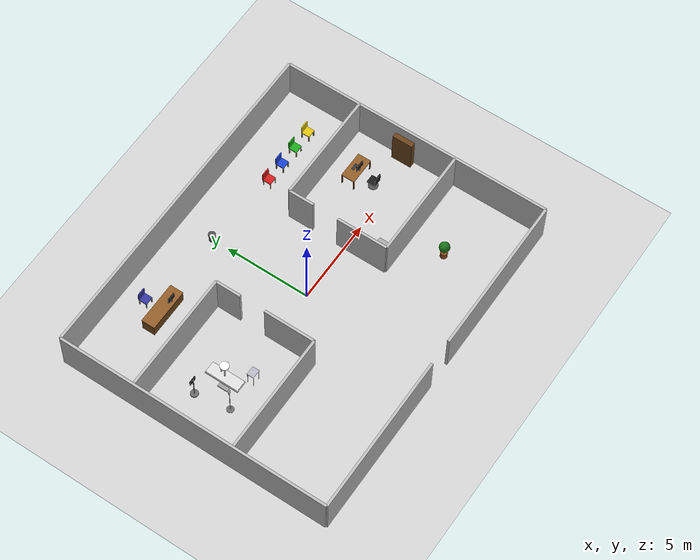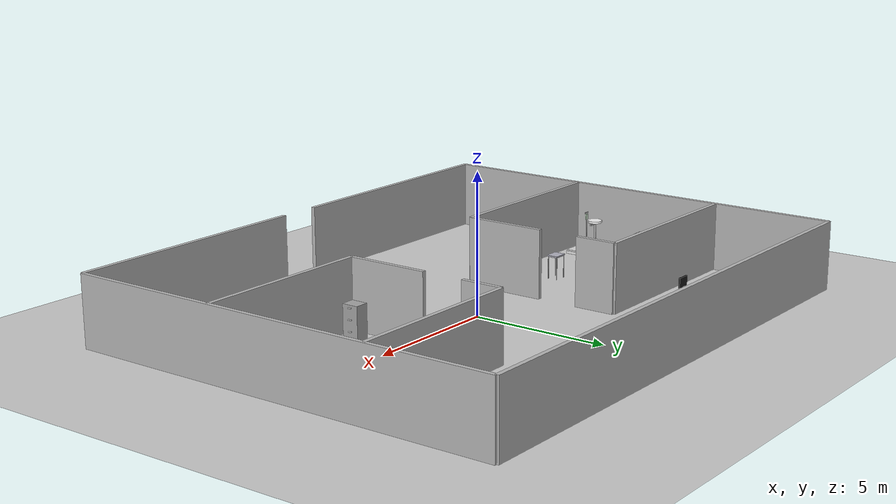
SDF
<?xml version="1.0"?>
<sdf version="1.7">
  <world name="uvc3_room">

    <!-- ========== GAZEBO ROS PLUGINS ========== -->
    <plugin name="gazebo_ros_state" filename="libgazebo_ros_state.so">
      <ros>
        <namespace>/gazebo</namespace>
      </ros>
      <update_rate>10.0</update_rate>
    </plugin>

    <!-- ========== LIGHTING ========== -->
    <light name="sun" type="directional">
      <cast_shadows>0</cast_shadows>
      <pose>0 0 10 0 0 0</pose>
      <diffuse>0.6 0.6 0.6 1</diffuse>
      <specular>0.1 0.1 0.1 1</specular>
      <attenuation>
        <range>1000</range>
        <constant>0.9</constant>
        <linear>0.01</linear>
        <quadratic>0.001</quadratic>
      </attenuation>
      <direction>0 0 -1</direction>
      <spot><inner_angle>0</inner_angle><outer_angle>0</outer_angle><falloff>0</falloff></spot>
    </light>

    <!-- ========== PHYSICS ========== -->
    <gravity>0 0 -9.8</gravity>
    <magnetic_field>6e-06 2.3e-05 -4.2e-05</magnetic_field>
    <atmosphere type="adiabatic"/>
    <physics type="ode">
      <max_step_size>0.001</max_step_size>
      <real_time_factor>1</real_time_factor>
      <real_time_update_rate>1000</real_time_update_rate>
    </physics>

    <!-- ========== SCENE ========== -->
    <scene>
      <ambient>0.4 0.4 0.4 1</ambient>
      <background>0.5 0.5 0.5 1</background>
      <shadows>0</shadows>
    </scene>

    <audio><device>default</device></audio>
    <wind/>
    <spherical_coordinates>
      <surface_model>EARTH_WGS84</surface_model>
      <latitude_deg>0</latitude_deg>
      <longitude_deg>0</longitude_deg>
      <elevation>0</elevation>
      <heading_deg>0</heading_deg>
    </spherical_coordinates>

    <!-- ========== GROUND PLANE ========== -->
    <model name="ground_plane">
      <static>1</static>
      <link name="link">
        <collision name="collision">
          <geometry><plane><normal>0 0 1</normal><size>100 100</size></plane></geometry>
          <surface>
            <friction><ode><mu>100</mu><mu2>50</mu2></ode><torsional><ode/></torsional></friction>
            <contact><ode/></contact>
            <bounce/>
          </surface>
          <max_contacts>10</max_contacts>
        </collision>
        <visual name="visual">
          <cast_shadows>0</cast_shadows>
          <geometry><plane><normal>0 0 1</normal><size>100 100</size></plane></geometry>
          <material><script><uri>file://media/materials/scripts/gazebo.material</uri><n>Gazebo/Grey</n></script></material>
        </visual>
        <self_collide>0</self_collide><enable_wind>0</enable_wind><kinematic>0</kinematic>
      </link>
    </model>

    <!-- OUTER ENVIRONMENT WALLS                                     -->
    <!-- Room: 20m wide (x:-10 to 10), 16m deep (y:-8 to 8)        -->
    <!-- Entry: south wall, opening at x:-0.75 to 0.75              -->
    <model name="uvc3_outer_walls">
      <static>1</static>
      <pose>0 0 0 0 0 0</pose>

      <!-- South wall left segment: x -10 to -0.75 => length 9.25, center x=-5.375 -->
      <link name="Wall_south_left">
        <collision name="col"><geometry><box><size>9.25 0.15 2.5</size></box></geometry><pose>0 0 1.25 0 0 0</pose><max_contacts>10</max_contacts><surface><contact><ode/></contact><bounce/><friction><torsional><ode/></torsional><ode/></friction></surface></collision>
        <visual name="vis"><pose>0 0 1.25 0 0 0</pose><geometry><box><size>9.25 0.15 2.5</size></box></geometry><material><script><uri>file://media/materials/scripts/gazebo.material</uri><n>Gazebo/Grey</n></script></material></visual>
        <pose>-5.375 -8.0 0 0 0 0</pose>
        <self_collide>0</self_collide><enable_wind>0</enable_wind><kinematic>0</kinematic>
      </link>

      <!-- South wall right segment: x 0.75 to 10 => length 9.25, center x=5.375 -->
      <link name="Wall_south_right">
        <collision name="col"><geometry><box><size>9.25 0.15 2.5</size></box></geometry><pose>0 0 1.25 0 0 0</pose><max_contacts>10</max_contacts><surface><contact><ode/></contact><bounce/><friction><torsional><ode/></torsional><ode/></friction></surface></collision>
        <visual name="vis"><pose>0 0 1.25 0 0 0</pose><geometry><box><size>9.25 0.15 2.5</size></box></geometry><material><script><uri>file://media/materials/scripts/gazebo.material</uri><n>Gazebo/Grey</n></script></material></visual>
        <pose>5.375 -8.0 0 0 0 0</pose>
        <self_collide>0</self_collide><enable_wind>0</enable_wind><kinematic>0</kinematic>
      </link>

      <!-- North wall: full 20m -->
      <link name="Wall_north">
        <collision name="col"><geometry><box><size>20.0 0.15 2.5</size></box></geometry><pose>0 0 1.25 0 0 0</pose><max_contacts>10</max_contacts><surface><contact><ode/></contact><bounce/><friction><torsional><ode/></torsional><ode/></friction></surface></collision>
        <visual name="vis"><pose>0 0 1.25 0 0 0</pose><geometry><box><size>20.0 0.15 2.5</size></box></geometry><material><script><uri>file://media/materials/scripts/gazebo.material</uri><n>Gazebo/Grey</n></script></material></visual>
        <pose>0 8.0 0 0 0 0</pose>
        <self_collide>0</self_collide><enable_wind>0</enable_wind><kinematic>0</kinematic>
      </link>

      <!-- East wall: full 16m -->
      <link name="Wall_east">
        <collision name="col"><geometry><box><size>0.15 16.0 2.5</size></box></geometry><pose>0 0 1.25 0 0 0</pose><max_contacts>10</max_contacts><surface><contact><ode/></contact><bounce/><friction><torsional><ode/></torsional><ode/></friction></surface></collision>
        <visual name="vis"><pose>0 0 1.25 0 0 0</pose><geometry><box><size>0.15 16.0 2.5</size></box></geometry><material><script><uri>file://media/materials/scripts/gazebo.material</uri><n>Gazebo/Grey</n></script></material></visual>
        <pose>10.0 0 0 0 0 0</pose>
        <self_collide>0</self_collide><enable_wind>0</enable_wind><kinematic>0</kinematic>
      </link>

      <!-- West wall: full 16m (closed) -->
      <link name="Wall_west">
        <collision name="col"><geometry><box><size>0.15 16.0 2.5</size></box></geometry><pose>0 0 1.25 0 0 0</pose><max_contacts>10</max_contacts><surface><contact><ode/></contact><bounce/><friction><torsional><ode/></torsional><ode/></friction></surface></collision>
        <visual name="vis"><pose>0 0 1.25 0 0 0</pose><geometry><box><size>0.15 16.0 2.5</size></box></geometry><material><script><uri>file://media/materials/scripts/gazebo.material</uri><n>Gazebo/Grey</n></script></material></visual>
        <pose>-10.0 0 0 0 0 0</pose>
        <self_collide>0</self_collide><enable_wind>0</enable_wind><kinematic>0</kinematic>
      </link>

    </model>

    <!-- ROOM-1: OFFICE  (right side)                               -->
    <!-- Outer boundary: x: 3.5 to 10.0, y: -2.5 to 3.5           -->
    <!-- Inner space:    x: 3.65 to 9.85, y: -2.35 to 3.35        -->
    <!-- Entry opening:  west wall of room, y: 0.5 to 2.0          -->
    <model name="room1_office_walls">
      <static>1</static>
      <pose>0 0 0 0 0 0</pose>

      <!-- South wall of office: x 3.5 to 10.0, length 6.5 -->
      <link name="R1_south">
        <collision name="col"><geometry><box><size>6.5 0.15 2.5</size></box></geometry><pose>0 0 1.25 0 0 0</pose><max_contacts>10</max_contacts><surface><contact><ode/></contact><bounce/><friction><torsional><ode/></torsional><ode/></friction></surface></collision>
        <visual name="vis"><pose>0 0 1.25 0 0 0</pose><geometry><box><size>6.5 0.15 2.5</size></box></geometry><material><script><uri>file://media/materials/scripts/gazebo.material</uri><n>Gazebo/White</n></script></material></visual>
        <pose>6.75 -2.5 0 0 0 0</pose>
        <self_collide>0</self_collide><enable_wind>0</enable_wind><kinematic>0</kinematic>
      </link>

      <!-- North wall of office: x 3.5 to 10.0, length 6.5 -->
      <link name="R1_north">
        <collision name="col"><geometry><box><size>6.5 0.15 2.5</size></box></geometry><pose>0 0 1.25 0 0 0</pose><max_contacts>10</max_contacts><surface><contact><ode/></contact><bounce/><friction><torsional><ode/></torsional><ode/></friction></surface></collision>
        <visual name="vis"><pose>0 0 1.25 0 0 0</pose><geometry><box><size>6.5 0.15 2.5</size></box></geometry><material><script><uri>file://media/materials/scripts/gazebo.material</uri><n>Gazebo/White</n></script></material></visual>
        <pose>6.75 3.5 0 0 0 0</pose>
        <self_collide>0</self_collide><enable_wind>0</enable_wind><kinematic>0</kinematic>
      </link>

      <!-- West wall of office south segment: y -2.5 to 0.5 => length 3.0, center y=-1.0 -->
      <link name="R1_west_south">
        <collision name="col"><geometry><box><size>0.15 3.0 2.5</size></box></geometry><pose>0 0 1.25 0 0 0</pose><max_contacts>10</max_contacts><surface><contact><ode/></contact><bounce/><friction><torsional><ode/></torsional><ode/></friction></surface></collision>
        <visual name="vis"><pose>0 0 1.25 0 0 0</pose><geometry><box><size>0.15 3.0 2.5</size></box></geometry><material><script><uri>file://media/materials/scripts/gazebo.material</uri><n>Gazebo/White</n></script></material></visual>
        <pose>3.5 -1.0 0 0 0 0</pose>
        <self_collide>0</self_collide><enable_wind>0</enable_wind><kinematic>0</kinematic>
      </link>

      <!-- West wall of office north segment: y 2.0 to 3.5 => length 1.5, center y=2.75 -->
      <link name="R1_west_north">
        <collision name="col"><geometry><box><size>0.15 1.5 2.5</size></box></geometry><pose>0 0 1.25 0 0 0</pose><max_contacts>10</max_contacts><surface><contact><ode/></contact><bounce/><friction><torsional><ode/></torsional><ode/></friction></surface></collision>
        <visual name="vis"><pose>0 0 1.25 0 0 0</pose><geometry><box><size>0.15 1.5 2.5</size></box></geometry><material><script><uri>file://media/materials/scripts/gazebo.material</uri><n>Gazebo/White</n></script></material></visual>
        <pose>3.5 2.75 0 0 0 0</pose>
        <self_collide>0</self_collide><enable_wind>0</enable_wind><kinematic>0</kinematic>
      </link>

    </model>

    <!-- ROOM-2: OPERATION THEATRE (fixed to west wall)             -->
    <!-- Outer boundary: x: -10.0 to -3.0, y: -2.5 to 3.5         -->
    <!-- West wall shared with outer west wall (no inner west wall) -->
    <!-- Entry opening: east wall of room, y: 0.5 to 2.0           -->
    <model name="room2_ot_walls">
      <static>1</static>
      <pose>0 0 0 0 0 0</pose>

      <!-- South wall of OT: x -10.0 to -3.0, length 7.0, center x=-6.5 -->
      <link name="R2_south">
        <collision name="col"><geometry><box><size>7.0 0.15 2.5</size></box></geometry><pose>0 0 1.25 0 0 0</pose><max_contacts>10</max_contacts><surface><contact><ode/></contact><bounce/><friction><torsional><ode/></torsional><ode/></friction></surface></collision>
        <visual name="vis"><pose>0 0 1.25 0 0 0</pose><geometry><box><size>7.0 0.15 2.5</size></box></geometry><material><script><uri>file://media/materials/scripts/gazebo.material</uri><n>Gazebo/White</n></script></material></visual>
        <pose>-6.5 -2.5 0 0 0 0</pose>
        <self_collide>0</self_collide><enable_wind>0</enable_wind><kinematic>0</kinematic>
      </link>

      <!-- North wall of OT: x -10.0 to -3.0, length 7.0, center x=-6.5 -->
      <link name="R2_north">
        <collision name="col"><geometry><box><size>7.0 0.15 2.5</size></box></geometry><pose>0 0 1.25 0 0 0</pose><max_contacts>10</max_contacts><surface><contact><ode/></contact><bounce/><friction><torsional><ode/></torsional><ode/></friction></surface></collision>
        <visual name="vis"><pose>0 0 1.25 0 0 0</pose><geometry><box><size>7.0 0.15 2.5</size></box></geometry><material><script><uri>file://media/materials/scripts/gazebo.material</uri><n>Gazebo/White</n></script></material></visual>
        <pose>-6.5 3.5 0 0 0 0</pose>
        <self_collide>0</self_collide><enable_wind>0</enable_wind><kinematic>0</kinematic>
      </link>

      <!-- East wall of OT south segment: y -2.5 to 0.5 => length 3.0, center y=-1.0 -->
      <link name="R2_east_south">
        <collision name="col"><geometry><box><size>0.15 3.0 2.5</size></box></geometry><pose>0 0 1.25 0 0 0</pose><max_contacts>10</max_contacts><surface><contact><ode/></contact><bounce/><friction><torsional><ode/></torsional><ode/></friction></surface></collision>
        <visual name="vis"><pose>0 0 1.25 0 0 0</pose><geometry><box><size>0.15 3.0 2.5</size></box></geometry><material><script><uri>file://media/materials/scripts/gazebo.material</uri><n>Gazebo/White</n></script></material></visual>
        <pose>-3.0 -1.0 0 0 0 0</pose>
        <self_collide>0</self_collide><enable_wind>0</enable_wind><kinematic>0</kinematic>
      </link>

      <!-- East wall of OT north segment: y 2.0 to 3.5 => length 1.5, center y=2.75 -->
      <link name="R2_east_north">
        <collision name="col"><geometry><box><size>0.15 1.5 2.5</size></box></geometry><pose>0 0 1.25 0 0 0</pose><max_contacts>10</max_contacts><surface><contact><ode/></contact><bounce/><friction><torsional><ode/></torsional><ode/></friction></surface></collision>
        <visual name="vis"><pose>0 0 1.25 0 0 0</pose><geometry><box><size>0.15 1.5 2.5</size></box></geometry><material><script><uri>file://media/materials/scripts/gazebo.material</uri><n>Gazebo/White</n></script></material></visual>
        <pose>-3.0 2.75 0 0 0 0</pose>
        <self_collide>0</self_collide><enable_wind>0</enable_wind><kinematic>0</kinematic>
      </link>

    </model>

    <!-- LOBBY OBJECTS                                               -->

    <!-- RECEPTION TABLE (top-left lobby, x=-5.0 y=5.5) -->
    <!-- Long desk: 2.5m wide, 0.8m deep, 0.75m tall    -->
    <model name="reception_table">
      <static>1</static>
      <pose>-5.0 5.5 0 0 0 0</pose>
      <link name="link">
        <!-- Desk top -->
        <visual name="top_vis"><pose>0 0 0.75 0 0 0</pose><geometry><box><size>2.5 0.8 0.06</size></box></geometry><material><ambient>0.55 0.35 0.15 1</ambient><diffuse>0.55 0.35 0.15 1</diffuse><specular>0.15 0.10 0.05 1</specular></material></visual>
        <collision name="top_col"><pose>0 0 0.75 0 0 0</pose><geometry><box><size>2.5 0.8 0.06</size></box></geometry><max_contacts>10</max_contacts></collision>
        <!-- Desk body/cabinet -->
        <visual name="body_vis"><pose>0 0 0.375 0 0 0</pose><geometry><box><size>2.5 0.75 0.75</size></box></geometry><material><ambient>0.45 0.28 0.10 1</ambient><diffuse>0.45 0.28 0.10 1</diffuse></material></visual>
        <collision name="body_col"><pose>0 0 0.375 0 0 0</pose><geometry><box><size>2.5 0.75 0.75</size></box></geometry><max_contacts>10</max_contacts></collision>
        <!-- Monitor on desk -->
        <visual name="monitor_vis"><pose>0.5 -0.2 1.1 0 0 0</pose><geometry><box><size>0.50 0.05 0.35</size></box></geometry><material><ambient>0.10 0.10 0.10 1</ambient><diffuse>0.10 0.10 0.10 1</diffuse></material></visual>
        <collision name="monitor_col"><pose>0.5 -0.2 1.1 0 0 0</pose><geometry><box><size>0.50 0.05 0.35</size></box></geometry><max_contacts>10</max_contacts></collision>
        <!-- Monitor stand -->
        <visual name="mstand_vis"><pose>0.5 -0.2 0.85 0 0 0</pose><geometry><box><size>0.08 0.08 0.20</size></box></geometry><material><ambient>0.15 0.15 0.15 1</ambient><diffuse>0.15 0.15 0.15 1</diffuse></material></visual>
        <collision name="mstand_col"><pose>0.5 -0.2 0.85 0 0 0</pose><geometry><box><size>0.08 0.08 0.20</size></box></geometry><max_contacts>10</max_contacts></collision>
        <self_collide>0</self_collide><enable_wind>0</enable_wind><kinematic>0</kinematic>
      </link>
    </model>

    <!-- RECEPTION CHAIR (behind reception table) -->
    <model name="reception_chair">
      <static>1</static>
      <pose>-5.0 6.6 0 0 0 0</pose>
      <link name="link">
        <visual name="seat_vis"><pose>0 0 0.45 0 0 0</pose><geometry><box><size>0.50 0.50 0.06</size></box></geometry><material><ambient>0.20 0.20 0.60 1</ambient><diffuse>0.20 0.20 0.60 1</diffuse></material></visual>
        <collision name="seat_col"><pose>0 0 0.45 0 0 0</pose><geometry><box><size>0.50 0.50 0.06</size></box></geometry><max_contacts>10</max_contacts></collision>
        <visual name="back_vis"><pose>0 0.24 0.70 0 0 0</pose><geometry><box><size>0.50 0.06 0.50</size></box></geometry><material><ambient>0.20 0.20 0.60 1</ambient><diffuse>0.20 0.20 0.60 1</diffuse></material></visual>
        <collision name="back_col"><pose>0 0.24 0.70 0 0 0</pose><geometry><box><size>0.50 0.06 0.50</size></box></geometry><max_contacts>10</max_contacts></collision>
        <visual name="leg1_vis"><pose>-0.22 -0.22 0.225 0 0 0</pose><geometry><box><size>0.05 0.05 0.45</size></box></geometry><material><ambient>0.15 0.10 0.05 1</ambient><diffuse>0.15 0.10 0.05 1</diffuse></material></visual>
        <collision name="leg1_col"><pose>-0.22 -0.22 0.225 0 0 0</pose><geometry><box><size>0.05 0.05 0.45</size></box></geometry><max_contacts>10</max_contacts></collision>
        <visual name="leg2_vis"><pose>0.22 -0.22 0.225 0 0 0</pose><geometry><box><size>0.05 0.05 0.45</size></box></geometry><material><ambient>0.15 0.10 0.05 1</ambient><diffuse>0.15 0.10 0.05 1</diffuse></material></visual>
        <collision name="leg2_col"><pose>0.22 -0.22 0.225 0 0 0</pose><geometry><box><size>0.05 0.05 0.45</size></box></geometry><max_contacts>10</max_contacts></collision>
        <visual name="leg3_vis"><pose>-0.22 0.22 0.225 0 0 0</pose><geometry><box><size>0.05 0.05 0.45</size></box></geometry><material><ambient>0.15 0.10 0.05 1</ambient><diffuse>0.15 0.10 0.05 1</diffuse></material></visual>
        <collision name="leg3_col"><pose>-0.22 0.22 0.225 0 0 0</pose><geometry><box><size>0.05 0.05 0.45</size></box></geometry><max_contacts>10</max_contacts></collision>
        <visual name="leg4_vis"><pose>0.22 0.22 0.225 0 0 0</pose><geometry><box><size>0.05 0.05 0.45</size></box></geometry><material><ambient>0.15 0.10 0.05 1</ambient><diffuse>0.15 0.10 0.05 1</diffuse></material></visual>
        <collision name="leg4_col"><pose>0.22 0.22 0.225 0 0 0</pose><geometry><box><size>0.05 0.05 0.45</size></box></geometry><max_contacts>10</max_contacts></collision>
        <self_collide>0</self_collide><enable_wind>0</enable_wind><kinematic>0</kinematic>
      </link>
    </model>

    <!-- DUST BIN (top-center lobby, x=0.0 y=6.0) -->
    <model name="dust_bin">
      <static>1</static>
      <pose>0.0 6.0 0 0 0 0</pose>
      <link name="link">
        <!-- Bin body (slightly tapered approximated as box) -->
        <visual name="bin_vis"><pose>0 0 0.25 0 0 0</pose><geometry><cylinder><radius>0.18</radius><length>0.50</length></cylinder></geometry><material><ambient>0.20 0.20 0.20 1</ambient><diffuse>0.20 0.20 0.20 1</diffuse><specular>0.10 0.10 0.10 1</specular></material></visual>
        <collision name="bin_col"><pose>0 0 0.25 0 0 0</pose><geometry><cylinder><radius>0.18</radius><length>0.50</length></cylinder></geometry><max_contacts>10</max_contacts></collision>
        <!-- Bin lid rim -->
        <visual name="rim_vis"><pose>0 0 0.51 0 0 0</pose><geometry><cylinder><radius>0.20</radius><length>0.03</length></cylinder></geometry><material><ambient>0.30 0.30 0.30 1</ambient><diffuse>0.30 0.30 0.30 1</diffuse></material></visual>
        <collision name="rim_col"><pose>0 0 0.51 0 0 0</pose><geometry><cylinder><radius>0.20</radius><length>0.03</length></cylinder></geometry><max_contacts>10</max_contacts></collision>
        <self_collide>0</self_collide><enable_wind>0</enable_wind><kinematic>0</kinematic>
      </link>
    </model>

    <!-- WAITING CHAIR 1 - RED (x=4.5 y=5.5) -->
    <model name="waiting_chair_1">
      <static>1</static>
      <pose>4.5 5.5 0 0 0 0</pose>
      <link name="link">
        <visual name="seat_vis"><pose>0 0 0.45 0 0 0</pose><geometry><box><size>0.50 0.50 0.06</size></box></geometry><material><ambient>0.80 0.10 0.10 1</ambient><diffuse>0.80 0.10 0.10 1</diffuse></material></visual>
        <collision name="seat_col"><pose>0 0 0.45 0 0 0</pose><geometry><box><size>0.50 0.50 0.06</size></box></geometry><max_contacts>10</max_contacts></collision>
        <visual name="back_vis"><pose>0 0.24 0.70 0 0 0</pose><geometry><box><size>0.50 0.06 0.50</size></box></geometry><material><ambient>0.80 0.10 0.10 1</ambient><diffuse>0.80 0.10 0.10 1</diffuse></material></visual>
        <collision name="back_col"><pose>0 0.24 0.70 0 0 0</pose><geometry><box><size>0.50 0.06 0.50</size></box></geometry><max_contacts>10</max_contacts></collision>
        <visual name="leg1_vis"><pose>-0.22 -0.22 0.225 0 0 0</pose><geometry><box><size>0.05 0.05 0.45</size></box></geometry><material><ambient>0.15 0.10 0.05 1</ambient><diffuse>0.15 0.10 0.05 1</diffuse></material></visual>
        <collision name="leg1_col"><pose>-0.22 -0.22 0.225 0 0 0</pose><geometry><box><size>0.05 0.05 0.45</size></box></geometry><max_contacts>10</max_contacts></collision>
        <visual name="leg2_vis"><pose>0.22 -0.22 0.225 0 0 0</pose><geometry><box><size>0.05 0.05 0.45</size></box></geometry><material><ambient>0.15 0.10 0.05 1</ambient><diffuse>0.15 0.10 0.05 1</diffuse></material></visual>
        <collision name="leg2_col"><pose>0.22 -0.22 0.225 0 0 0</pose><geometry><box><size>0.05 0.05 0.45</size></box></geometry><max_contacts>10</max_contacts></collision>
        <visual name="leg3_vis"><pose>-0.22 0.22 0.225 0 0 0</pose><geometry><box><size>0.05 0.05 0.45</size></box></geometry><material><ambient>0.15 0.10 0.05 1</ambient><diffuse>0.15 0.10 0.05 1</diffuse></material></visual>
        <collision name="leg3_col"><pose>-0.22 0.22 0.225 0 0 0</pose><geometry><box><size>0.05 0.05 0.45</size></box></geometry><max_contacts>10</max_contacts></collision>
        <visual name="leg4_vis"><pose>0.22 0.22 0.225 0 0 0</pose><geometry><box><size>0.05 0.05 0.45</size></box></geometry><material><ambient>0.15 0.10 0.05 1</ambient><diffuse>0.15 0.10 0.05 1</diffuse></material></visual>
        <collision name="leg4_col"><pose>0.22 0.22 0.225 0 0 0</pose><geometry><box><size>0.05 0.05 0.45</size></box></geometry><max_contacts>10</max_contacts></collision>
        <self_collide>0</self_collide><enable_wind>0</enable_wind><kinematic>0</kinematic>
      </link>
    </model>

    <!-- WAITING CHAIR 2 - BLUE (x=5.7 y=5.5) -->
    <model name="waiting_chair_2">
      <static>1</static>
      <pose>5.7 5.5 0 0 0 0</pose>
      <link name="link">
        <visual name="seat_vis"><pose>0 0 0.45 0 0 0</pose><geometry><box><size>0.50 0.50 0.06</size></box></geometry><material><ambient>0.10 0.25 0.80 1</ambient><diffuse>0.10 0.25 0.80 1</diffuse></material></visual>
        <collision name="seat_col"><pose>0 0 0.45 0 0 0</pose><geometry><box><size>0.50 0.50 0.06</size></box></geometry><max_contacts>10</max_contacts></collision>
        <visual name="back_vis"><pose>0 0.24 0.70 0 0 0</pose><geometry><box><size>0.50 0.06 0.50</size></box></geometry><material><ambient>0.10 0.25 0.80 1</ambient><diffuse>0.10 0.25 0.80 1</diffuse></material></visual>
        <collision name="back_col"><pose>0 0.24 0.70 0 0 0</pose><geometry><box><size>0.50 0.06 0.50</size></box></geometry><max_contacts>10</max_contacts></collision>
        <visual name="leg1_vis"><pose>-0.22 -0.22 0.225 0 0 0</pose><geometry><box><size>0.05 0.05 0.45</size></box></geometry><material><ambient>0.15 0.10 0.05 1</ambient><diffuse>0.15 0.10 0.05 1</diffuse></material></visual>
        <collision name="leg1_col"><pose>-0.22 -0.22 0.225 0 0 0</pose><geometry><box><size>0.05 0.05 0.45</size></box></geometry><max_contacts>10</max_contacts></collision>
        <visual name="leg2_vis"><pose>0.22 -0.22 0.225 0 0 0</pose><geometry><box><size>0.05 0.05 0.45</size></box></geometry><material><ambient>0.15 0.10 0.05 1</ambient><diffuse>0.15 0.10 0.05 1</diffuse></material></visual>
        <collision name="leg2_col"><pose>0.22 -0.22 0.225 0 0 0</pose><geometry><box><size>0.05 0.05 0.45</size></box></geometry><max_contacts>10</max_contacts></collision>
        <visual name="leg3_vis"><pose>-0.22 0.22 0.225 0 0 0</pose><geometry><box><size>0.05 0.05 0.45</size></box></geometry><material><ambient>0.15 0.10 0.05 1</ambient><diffuse>0.15 0.10 0.05 1</diffuse></material></visual>
        <collision name="leg3_col"><pose>-0.22 0.22 0.225 0 0 0</pose><geometry><box><size>0.05 0.05 0.45</size></box></geometry><max_contacts>10</max_contacts></collision>
        <visual name="leg4_vis"><pose>0.22 0.22 0.225 0 0 0</pose><geometry><box><size>0.05 0.05 0.45</size></box></geometry><material><ambient>0.15 0.10 0.05 1</ambient><diffuse>0.15 0.10 0.05 1</diffuse></material></visual>
        <collision name="leg4_col"><pose>0.22 0.22 0.225 0 0 0</pose><geometry><box><size>0.05 0.05 0.45</size></box></geometry><max_contacts>10</max_contacts></collision>
        <self_collide>0</self_collide><enable_wind>0</enable_wind><kinematic>0</kinematic>
      </link>
    </model>

    <!-- WAITING CHAIR 3 - GREEN (x=6.9 y=5.5) -->
    <model name="waiting_chair_3">
      <static>1</static>
      <pose>6.9 5.5 0 0 0 0</pose>
      <link name="link">
        <visual name="seat_vis"><pose>0 0 0.45 0 0 0</pose><geometry><box><size>0.50 0.50 0.06</size></box></geometry><material><ambient>0.10 0.65 0.10 1</ambient><diffuse>0.10 0.65 0.10 1</diffuse></material></visual>
        <collision name="seat_col"><pose>0 0 0.45 0 0 0</pose><geometry><box><size>0.50 0.50 0.06</size></box></geometry><max_contacts>10</max_contacts></collision>
        <visual name="back_vis"><pose>0 0.24 0.70 0 0 0</pose><geometry><box><size>0.50 0.06 0.50</size></box></geometry><material><ambient>0.10 0.65 0.10 1</ambient><diffuse>0.10 0.65 0.10 1</diffuse></material></visual>
        <collision name="back_col"><pose>0 0.24 0.70 0 0 0</pose><geometry><box><size>0.50 0.06 0.50</size></box></geometry><max_contacts>10</max_contacts></collision>
        <visual name="leg1_vis"><pose>-0.22 -0.22 0.225 0 0 0</pose><geometry><box><size>0.05 0.05 0.45</size></box></geometry><material><ambient>0.15 0.10 0.05 1</ambient><diffuse>0.15 0.10 0.05 1</diffuse></material></visual>
        <collision name="leg1_col"><pose>-0.22 -0.22 0.225 0 0 0</pose><geometry><box><size>0.05 0.05 0.45</size></box></geometry><max_contacts>10</max_contacts></collision>
        <visual name="leg2_vis"><pose>0.22 -0.22 0.225 0 0 0</pose><geometry><box><size>0.05 0.05 0.45</size></box></geometry><material><ambient>0.15 0.10 0.05 1</ambient><diffuse>0.15 0.10 0.05 1</diffuse></material></visual>
        <collision name="leg2_col"><pose>0.22 -0.22 0.225 0 0 0</pose><geometry><box><size>0.05 0.05 0.45</size></box></geometry><max_contacts>10</max_contacts></collision>
        <visual name="leg3_vis"><pose>-0.22 0.22 0.225 0 0 0</pose><geometry><box><size>0.05 0.05 0.45</size></box></geometry><material><ambient>0.15 0.10 0.05 1</ambient><diffuse>0.15 0.10 0.05 1</diffuse></material></visual>
        <collision name="leg3_col"><pose>-0.22 0.22 0.225 0 0 0</pose><geometry><box><size>0.05 0.05 0.45</size></box></geometry><max_contacts>10</max_contacts></collision>
        <visual name="leg4_vis"><pose>0.22 0.22 0.225 0 0 0</pose><geometry><box><size>0.05 0.05 0.45</size></box></geometry><material><ambient>0.15 0.10 0.05 1</ambient><diffuse>0.15 0.10 0.05 1</diffuse></material></visual>
        <collision name="leg4_col"><pose>0.22 0.22 0.225 0 0 0</pose><geometry><box><size>0.05 0.05 0.45</size></box></geometry><max_contacts>10</max_contacts></collision>
        <self_collide>0</self_collide><enable_wind>0</enable_wind><kinematic>0</kinematic>
      </link>
    </model>

    <!-- WAITING CHAIR 4 - YELLOW (x=8.1 y=5.5) -->
    <model name="waiting_chair_4">
      <static>1</static>
      <pose>8.1 5.5 0 0 0 0</pose>
      <link name="link">
        <visual name="seat_vis"><pose>0 0 0.45 0 0 0</pose><geometry><box><size>0.50 0.50 0.06</size></box></geometry><material><ambient>0.85 0.75 0.05 1</ambient><diffuse>0.85 0.75 0.05 1</diffuse></material></visual>
        <collision name="seat_col"><pose>0 0 0.45 0 0 0</pose><geometry><box><size>0.50 0.50 0.06</size></box></geometry><max_contacts>10</max_contacts></collision>
        <visual name="back_vis"><pose>0 0.24 0.70 0 0 0</pose><geometry><box><size>0.50 0.06 0.50</size></box></geometry><material><ambient>0.85 0.75 0.05 1</ambient><diffuse>0.85 0.75 0.05 1</diffuse></material></visual>
        <collision name="back_col"><pose>0 0.24 0.70 0 0 0</pose><geometry><box><size>0.50 0.06 0.50</size></box></geometry><max_contacts>10</max_contacts></collision>
        <visual name="leg1_vis"><pose>-0.22 -0.22 0.225 0 0 0</pose><geometry><box><size>0.05 0.05 0.45</size></box></geometry><material><ambient>0.15 0.10 0.05 1</ambient><diffuse>0.15 0.10 0.05 1</diffuse></material></visual>
        <collision name="leg1_col"><pose>-0.22 -0.22 0.225 0 0 0</pose><geometry><box><size>0.05 0.05 0.45</size></box></geometry><max_contacts>10</max_contacts></collision>
        <visual name="leg2_vis"><pose>0.22 -0.22 0.225 0 0 0</pose><geometry><box><size>0.05 0.05 0.45</size></box></geometry><material><ambient>0.15 0.10 0.05 1</ambient><diffuse>0.15 0.10 0.05 1</diffuse></material></visual>
        <collision name="leg2_col"><pose>0.22 -0.22 0.225 0 0 0</pose><geometry><box><size>0.05 0.05 0.45</size></box></geometry><max_contacts>10</max_contacts></collision>
        <visual name="leg3_vis"><pose>-0.22 0.22 0.225 0 0 0</pose><geometry><box><size>0.05 0.05 0.45</size></box></geometry><material><ambient>0.15 0.10 0.05 1</ambient><diffuse>0.15 0.10 0.05 1</diffuse></material></visual>
        <collision name="leg3_col"><pose>-0.22 0.22 0.225 0 0 0</pose><geometry><box><size>0.05 0.05 0.45</size></box></geometry><max_contacts>10</max_contacts></collision>
        <visual name="leg4_vis"><pose>0.22 0.22 0.225 0 0 0</pose><geometry><box><size>0.05 0.05 0.45</size></box></geometry><material><ambient>0.15 0.10 0.05 1</ambient><diffuse>0.15 0.10 0.05 1</diffuse></material></visual>
        <collision name="leg4_col"><pose>0.22 0.22 0.225 0 0 0</pose><geometry><box><size>0.05 0.05 0.45</size></box></geometry><max_contacts>10</max_contacts></collision>
        <self_collide>0</self_collide><enable_wind>0</enable_wind><kinematic>0</kinematic>
      </link>
    </model>

    <!-- POTTED PLANT (bottom-right outer area, x=6.0 y=-4.5) -->
    <model name="potted_plant">
      <static>1</static>
      <pose>6.0 -4.5 0 0 0 0</pose>
      <link name="link">
        <!-- Pot -->
        <visual name="pot_vis"><pose>0 0 0.20 0 0 0</pose><geometry><cylinder><radius>0.20</radius><length>0.40</length></cylinder></geometry><material><ambient>0.50 0.28 0.10 1</ambient><diffuse>0.50 0.28 0.10 1</diffuse></material></visual>
        <collision name="pot_col"><pose>0 0 0.20 0 0 0</pose><geometry><cylinder><radius>0.20</radius><length>0.40</length></cylinder></geometry><max_contacts>10</max_contacts></collision>
        <!-- Plant trunk -->
        <visual name="trunk_vis"><pose>0 0 0.55 0 0 0</pose><geometry><cylinder><radius>0.05</radius><length>0.30</length></cylinder></geometry><material><ambient>0.25 0.15 0.05 1</ambient><diffuse>0.25 0.15 0.05 1</diffuse></material></visual>
        <collision name="trunk_col"><pose>0 0 0.55 0 0 0</pose><geometry><cylinder><radius>0.05</radius><length>0.30</length></cylinder></geometry><max_contacts>10</max_contacts></collision>
        <!-- Foliage (sphere approximation) -->
        <visual name="foliage_vis"><pose>0 0 0.90 0 0 0</pose><geometry><sphere><radius>0.30</radius></sphere></geometry><material><ambient>0.10 0.45 0.10 1</ambient><diffuse>0.10 0.45 0.10 1</diffuse></material></visual>
        <collision name="foliage_col"><pose>0 0 0.90 0 0 0</pose><geometry><sphere><radius>0.30</radius></sphere></geometry><max_contacts>10</max_contacts></collision>
        <self_collide>0</self_collide><enable_wind>0</enable_wind><kinematic>0</kinematic>
      </link>
    </model>

    <!-- ROOM-1: OFFICE INTERIOR OBJECTS                            -->

    <!-- OFFICE DESK (center-back of office, x=7.5 y=2.0) -->
    <model name="office_desk">
      <static>1</static>
      <pose>7.5 2.0 0 0 0 0</pose>
      <link name="link">
        <!-- Desk top -->
        <visual name="top_vis"><pose>0 0 0.75 0 0 0</pose><geometry><box><size>1.60 0.80 0.05</size></box></geometry><material><ambient>0.55 0.35 0.15 1</ambient><diffuse>0.55 0.35 0.15 1</diffuse><specular>0.15 0.10 0.05 1</specular></material></visual>
        <collision name="top_col"><pose>0 0 0.75 0 0 0</pose><geometry><box><size>1.60 0.80 0.05</size></box></geometry><max_contacts>10</max_contacts></collision>
        <!-- Leg FL -->
        <visual name="leg_fl_vis"><pose>-0.76 -0.37 0.375 0 0 0</pose><geometry><box><size>0.06 0.06 0.75</size></box></geometry><material><ambient>0.35 0.20 0.07 1</ambient><diffuse>0.35 0.20 0.07 1</diffuse></material></visual>
        <collision name="leg_fl_col"><pose>-0.76 -0.37 0.375 0 0 0</pose><geometry><box><size>0.06 0.06 0.75</size></box></geometry><max_contacts>10</max_contacts></collision>
        <!-- Leg FR -->
        <visual name="leg_fr_vis"><pose>0.76 -0.37 0.375 0 0 0</pose><geometry><box><size>0.06 0.06 0.75</size></box></geometry><material><ambient>0.35 0.20 0.07 1</ambient><diffuse>0.35 0.20 0.07 1</diffuse></material></visual>
        <collision name="leg_fr_col"><pose>0.76 -0.37 0.375 0 0 0</pose><geometry><box><size>0.06 0.06 0.75</size></box></geometry><max_contacts>10</max_contacts></collision>
        <!-- Leg RL -->
        <visual name="leg_rl_vis"><pose>-0.76 0.37 0.375 0 0 0</pose><geometry><box><size>0.06 0.06 0.75</size></box></geometry><material><ambient>0.35 0.20 0.07 1</ambient><diffuse>0.35 0.20 0.07 1</diffuse></material></visual>
        <collision name="leg_rl_col"><pose>-0.76 0.37 0.375 0 0 0</pose><geometry><box><size>0.06 0.06 0.75</size></box></geometry><max_contacts>10</max_contacts></collision>
        <!-- Leg RR -->
        <visual name="leg_rr_vis"><pose>0.76 0.37 0.375 0 0 0</pose><geometry><box><size>0.06 0.06 0.75</size></box></geometry><material><ambient>0.35 0.20 0.07 1</ambient><diffuse>0.35 0.20 0.07 1</diffuse></material></visual>
        <collision name="leg_rr_col"><pose>0.76 0.37 0.375 0 0 0</pose><geometry><box><size>0.06 0.06 0.75</size></box></geometry><max_contacts>10</max_contacts></collision>
        <!-- Monitor -->
        <visual name="monitor_vis"><pose>0 -0.2 1.10 0 0 0</pose><geometry><box><size>0.55 0.05 0.35</size></box></geometry><material><ambient>0.08 0.08 0.08 1</ambient><diffuse>0.08 0.08 0.08 1</diffuse></material></visual>
        <collision name="monitor_col"><pose>0 -0.2 1.10 0 0 0</pose><geometry><box><size>0.55 0.05 0.35</size></box></geometry><max_contacts>10</max_contacts></collision>
        <!-- Monitor stand -->
        <visual name="mstand_vis"><pose>0 -0.2 0.85 0 0 0</pose><geometry><box><size>0.08 0.08 0.20</size></box></geometry><material><ambient>0.15 0.15 0.15 1</ambient><diffuse>0.15 0.15 0.15 1</diffuse></material></visual>
        <collision name="mstand_col"><pose>0 -0.2 0.85 0 0 0</pose><geometry><box><size>0.08 0.08 0.20</size></box></geometry><max_contacts>10</max_contacts></collision>
        <!-- Keyboard -->
        <visual name="kb_vis"><pose>0 0.10 0.78 0 0 0</pose><geometry><box><size>0.40 0.15 0.02</size></box></geometry><material><ambient>0.20 0.20 0.20 1</ambient><diffuse>0.20 0.20 0.20 1</diffuse></material></visual>
        <collision name="kb_col"><pose>0 0.10 0.78 0 0 0</pose><geometry><box><size>0.40 0.15 0.02</size></box></geometry><max_contacts>10</max_contacts></collision>
        <self_collide>0</self_collide><enable_wind>0</enable_wind><kinematic>0</kinematic>
      </link>
    </model>

    <!-- OFFICE CHAIR (at desk, facing north toward monitor, x=7.5 y=0.9) -->
    <model name="office_chair">
      <static>1</static>
      <pose>7.5 0.9 0 0 0 3.14159</pose>
      <link name="link">
        <visual name="seat_vis"><pose>0 0 0.48 0 0 0</pose><geometry><box><size>0.50 0.50 0.06</size></box></geometry><material><ambient>0.10 0.10 0.10 1</ambient><diffuse>0.10 0.10 0.10 1</diffuse></material></visual>
        <collision name="seat_col"><pose>0 0 0.48 0 0 0</pose><geometry><box><size>0.50 0.50 0.06</size></box></geometry><max_contacts>10</max_contacts></collision>
        <visual name="back_vis"><pose>0 0.24 0.76 0 0 0</pose><geometry><box><size>0.50 0.06 0.55</size></box></geometry><material><ambient>0.10 0.10 0.10 1</ambient><diffuse>0.10 0.10 0.10 1</diffuse></material></visual>
        <collision name="back_col"><pose>0 0.24 0.76 0 0 0</pose><geometry><box><size>0.50 0.06 0.55</size></box></geometry><max_contacts>10</max_contacts></collision>
        <!-- Gas lift cylinder -->
        <visual name="lift_vis"><pose>0 0 0.24 0 0 0</pose><geometry><cylinder><radius>0.04</radius><length>0.48</length></cylinder></geometry><material><ambient>0.50 0.50 0.50 1</ambient><diffuse>0.50 0.50 0.50 1</diffuse></material></visual>
        <collision name="lift_col"><pose>0 0 0.24 0 0 0</pose><geometry><cylinder><radius>0.04</radius><length>0.48</length></cylinder></geometry><max_contacts>10</max_contacts></collision>
        <!-- Wheel base (flat disc) -->
        <visual name="base_vis"><pose>0 0 0.04 0 0 0</pose><geometry><cylinder><radius>0.28</radius><length>0.04</length></cylinder></geometry><material><ambient>0.30 0.30 0.30 1</ambient><diffuse>0.30 0.30 0.30 1</diffuse></material></visual>
        <collision name="base_col"><pose>0 0 0.04 0 0 0</pose><geometry><cylinder><radius>0.28</radius><length>0.04</length></cylinder></geometry><max_contacts>10</max_contacts></collision>
        <self_collide>0</self_collide><enable_wind>0</enable_wind><kinematic>0</kinematic>
      </link>
    </model>

    <!-- BOOKSHELF (east wall of office, x=9.7 y=0.5) -->
    <model name="bookshelf">
      <static>1</static>
      <pose>9.7 0.5 0 0 0 0</pose>
      <link name="link">
        <!-- Main body -->
        <visual name="body_vis"><pose>0 0 1.00 0 0 0</pose><geometry><box><size>0.30 1.20 2.00</size></box></geometry><material><ambient>0.40 0.25 0.10 1</ambient><diffuse>0.40 0.25 0.10 1</diffuse></material></visual>
        <collision name="body_col"><pose>0 0 1.00 0 0 0</pose><geometry><box><size>0.30 1.20 2.00</size></box></geometry><max_contacts>10</max_contacts></collision>
        <!-- Shelf 1 books (colored blocks) -->
        <visual name="books1_vis"><pose>0 0 0.40 0 0 0</pose><geometry><box><size>0.22 1.00 0.22</size></box></geometry><material><ambient>0.60 0.10 0.10 1</ambient><diffuse>0.60 0.10 0.10 1</diffuse></material></visual>
        <!-- Shelf 2 books -->
        <visual name="books2_vis"><pose>0 0 0.90 0 0 0</pose><geometry><box><size>0.22 1.00 0.22</size></box></geometry><material><ambient>0.10 0.10 0.60 1</ambient><diffuse>0.10 0.10 0.60 1</diffuse></material></visual>
        <!-- Shelf 3 books -->
        <visual name="books3_vis"><pose>0 0 1.40 0 0 0</pose><geometry><box><size>0.22 1.00 0.22</size></box></geometry><material><ambient>0.10 0.50 0.10 1</ambient><diffuse>0.10 0.50 0.10 1</diffuse></material></visual>
        <self_collide>0</self_collide><enable_wind>0</enable_wind><kinematic>0</kinematic>
      </link>
    </model>

    <!-- FILING CABINET (office corner, x=4.2 y=-1.8) -->
    <model name="filing_cabinet">
      <static>1</static>
      <pose>4.2 -1.8 0 0 0 0</pose>
      <link name="link">
        <visual name="body_vis"><pose>0 0 0.60 0 0 0</pose><geometry><box><size>0.50 0.60 1.20</size></box></geometry><material><ambient>0.65 0.65 0.65 1</ambient><diffuse>0.65 0.65 0.65 1</diffuse><specular>0.20 0.20 0.20 1</specular></material></visual>
        <collision name="body_col"><pose>0 0 0.60 0 0 0</pose><geometry><box><size>0.50 0.60 1.20</size></box></geometry><max_contacts>10</max_contacts></collision>
        <!-- Drawer handles -->
        <visual name="h1_vis"><pose>0.26 0 0.30 0 0 0</pose><geometry><box><size>0.04 0.15 0.04</size></box></geometry><material><ambient>0.80 0.80 0.80 1</ambient><diffuse>0.80 0.80 0.80 1</diffuse></material></visual>
        <visual name="h2_vis"><pose>0.26 0 0.70 0 0 0</pose><geometry><box><size>0.04 0.15 0.04</size></box></geometry><material><ambient>0.80 0.80 0.80 1</ambient><diffuse>0.80 0.80 0.80 1</diffuse></material></visual>
        <visual name="h3_vis"><pose>0.26 0 1.10 0 0 0</pose><geometry><box><size>0.04 0.15 0.04</size></box></geometry><material><ambient>0.80 0.80 0.80 1</ambient><diffuse>0.80 0.80 0.80 1</diffuse></material></visual>
        <self_collide>0</self_collide><enable_wind>0</enable_wind><kinematic>0</kinematic>
      </link>
    </model>

    <!-- ROOM-2: OPERATION THEATRE INTERIOR OBJECTS                 -->

    <!-- OPERATION TABLE (center of OT, x=-6.5 y=0.5) -->
    <model name="operation_table">
      <static>1</static>
      <pose>-6.5 0.5 0 0 0 0</pose>
      <link name="link">
        <!-- Table surface (padded, white) -->
        <visual name="top_vis"><pose>0 0 0.85 0 0 0</pose><geometry><box><size>0.70 2.00 0.10</size></box></geometry><material><ambient>0.90 0.90 0.90 1</ambient><diffuse>0.90 0.90 0.90 1</diffuse><specular>0.30 0.30 0.30 1</specular></material></visual>
        <collision name="top_col"><pose>0 0 0.85 0 0 0</pose><geometry><box><size>0.70 2.00 0.10</size></box></geometry><max_contacts>10</max_contacts></collision>
        <!-- Padding layer -->
        <visual name="pad_vis"><pose>0 0 0.92 0 0 0</pose><geometry><box><size>0.65 1.95 0.05</size></box></geometry><material><ambient>0.85 0.85 0.85 1</ambient><diffuse>0.85 0.85 0.85 1</diffuse></material></visual>
        <!-- Central column -->
        <visual name="col_vis"><pose>0 0 0.425 0 0 0</pose><geometry><box><size>0.15 0.15 0.85</size></box></geometry><material><ambient>0.70 0.70 0.70 1</ambient><diffuse>0.70 0.70 0.70 1</diffuse><specular>0.40 0.40 0.40 1</specular></material></visual>
        <collision name="col_col"><pose>0 0 0.425 0 0 0</pose><geometry><box><size>0.15 0.15 0.85</size></box></geometry><max_contacts>10</max_contacts></collision>
        <!-- Base plate -->
        <visual name="base_vis"><pose>0 0 0.04 0 0 0</pose><geometry><box><size>0.60 0.60 0.08</size></box></geometry><material><ambient>0.60 0.60 0.60 1</ambient><diffuse>0.60 0.60 0.60 1</diffuse></material></visual>
        <collision name="base_col"><pose>0 0 0.04 0 0 0</pose><geometry><box><size>0.60 0.60 0.08</size></box></geometry><max_contacts>10</max_contacts></collision>
        <self_collide>0</self_collide><enable_wind>0</enable_wind><kinematic>0</kinematic>
      </link>
    </model>

    <!-- OVERHEAD SURGICAL LIGHT STAND (above OT table, x=-6.5 y=0.5) -->
    <model name="surgical_light">
      <static>1</static>
      <pose>-6.5 0.5 0 0 0 0</pose>
      <link name="link">
        <!-- Vertical pole -->
        <visual name="pole_vis"><pose>0 0 1.50 0 0 0</pose><geometry><cylinder><radius>0.04</radius><length>1.00</length></cylinder></geometry><material><ambient>0.70 0.70 0.70 1</ambient><diffuse>0.70 0.70 0.70 1</diffuse><specular>0.40 0.40 0.40 1</specular></material></visual>
        <collision name="pole_col"><pose>0 0 1.50 0 0 0</pose><geometry><cylinder><radius>0.04</radius><length>1.00</length></cylinder></geometry><max_contacts>10</max_contacts></collision>
        <!-- Horizontal arm -->
        <visual name="arm_vis"><pose>0 0 2.0 0 0 0</pose><geometry><box><size>0.60 0.06 0.06</size></box></geometry><material><ambient>0.70 0.70 0.70 1</ambient><diffuse>0.70 0.70 0.70 1</diffuse></material></visual>
        <collision name="arm_col"><pose>0 0 2.0 0 0 0</pose><geometry><box><size>0.60 0.06 0.06</size></box></geometry><max_contacts>10</max_contacts></collision>
        <!-- Light head (disc) -->
        <visual name="head_vis"><pose>0 0 2.08 0 0 0</pose><geometry><cylinder><radius>0.25</radius><length>0.08</length></cylinder></geometry><material><ambient>0.95 0.95 0.95 1</ambient><diffuse>0.95 0.95 0.95 1</diffuse><specular>0.60 0.60 0.60 1</specular></material></visual>
        <collision name="head_col"><pose>0 0 2.08 0 0 0</pose><geometry><cylinder><radius>0.25</radius><length>0.08</length></cylinder></geometry><max_contacts>10</max_contacts></collision>
        <self_collide>0</self_collide><enable_wind>0</enable_wind><kinematic>0</kinematic>
      </link>
    </model>

    <!-- MEDICAL INSTRUMENT TROLLEY (beside OT table, x=-5.5 y=-0.5) -->
    <model name="instrument_trolley">
      <static>1</static>
      <pose>-5.5 -0.5 0 0 0 0</pose>
      <link name="link">
        <!-- Tray top -->
        <visual name="tray_vis"><pose>0 0 0.85 0 0 0</pose><geometry><box><size>0.50 0.40 0.04</size></box></geometry><material><ambient>0.80 0.80 0.85 1</ambient><diffuse>0.80 0.80 0.85 1</diffuse><specular>0.50 0.50 0.55 1</specular></material></visual>
        <collision name="tray_col"><pose>0 0 0.85 0 0 0</pose><geometry><box><size>0.50 0.40 0.04</size></box></geometry><max_contacts>10</max_contacts></collision>
        <!-- Tray rim -->
        <visual name="rim_vis"><pose>0 0 0.88 0 0 0</pose><geometry><box><size>0.52 0.42 0.03</size></box></geometry><material><ambient>0.70 0.70 0.75 1</ambient><diffuse>0.70 0.70 0.75 1</diffuse></material></visual>
        <!-- Legs (4 thin poles) -->
        <visual name="leg1_vis"><pose>-0.23 -0.18 0.425 0 0 0</pose><geometry><cylinder><radius>0.015</radius><length>0.85</length></cylinder></geometry><material><ambient>0.60 0.60 0.60 1</ambient><diffuse>0.60 0.60 0.60 1</diffuse></material></visual>
        <collision name="leg1_col"><pose>-0.23 -0.18 0.425 0 0 0</pose><geometry><cylinder><radius>0.015</radius><length>0.85</length></cylinder></geometry><max_contacts>10</max_contacts></collision>
        <visual name="leg2_vis"><pose>0.23 -0.18 0.425 0 0 0</pose><geometry><cylinder><radius>0.015</radius><length>0.85</length></cylinder></geometry><material><ambient>0.60 0.60 0.60 1</ambient><diffuse>0.60 0.60 0.60 1</diffuse></material></visual>
        <collision name="leg2_col"><pose>0.23 -0.18 0.425 0 0 0</pose><geometry><cylinder><radius>0.015</radius><length>0.85</length></cylinder></geometry><max_contacts>10</max_contacts></collision>
        <visual name="leg3_vis"><pose>-0.23 0.18 0.425 0 0 0</pose><geometry><cylinder><radius>0.015</radius><length>0.85</length></cylinder></geometry><material><ambient>0.60 0.60 0.60 1</ambient><diffuse>0.60 0.60 0.60 1</diffuse></material></visual>
        <collision name="leg3_col"><pose>-0.23 0.18 0.425 0 0 0</pose><geometry><cylinder><radius>0.015</radius><length>0.85</length></cylinder></geometry><max_contacts>10</max_contacts></collision>
        <visual name="leg4_vis"><pose>0.23 0.18 0.425 0 0 0</pose><geometry><cylinder><radius>0.015</radius><length>0.85</length></cylinder></geometry><material><ambient>0.60 0.60 0.60 1</ambient><diffuse>0.60 0.60 0.60 1</diffuse></material></visual>
        <collision name="leg4_col"><pose>0.23 0.18 0.425 0 0 0</pose><geometry><cylinder><radius>0.015</radius><length>0.85</length></cylinder></geometry><max_contacts>10</max_contacts></collision>
        <self_collide>0</self_collide><enable_wind>0</enable_wind><kinematic>0</kinematic>
      </link>
    </model>

    <!-- MEDICAL MONITOR STAND (beside OT table, x=-7.8 y=1.5) -->
    <model name="medical_monitor">
      <static>1</static>
      <pose>-7.8 1.5 0 0 0 0</pose>
      <link name="link">
        <!-- Stand pole -->
        <visual name="pole_vis"><pose>0 0 0.75 0 0 0</pose><geometry><cylinder><radius>0.03</radius><length>1.50</length></cylinder></geometry><material><ambient>0.50 0.50 0.50 1</ambient><diffuse>0.50 0.50 0.50 1</diffuse></material></visual>
        <collision name="pole_col"><pose>0 0 0.75 0 0 0</pose><geometry><cylinder><radius>0.03</radius><length>1.50</length></cylinder></geometry><max_contacts>10</max_contacts></collision>
        <!-- Base -->
        <visual name="base_vis"><pose>0 0 0.04 0 0 0</pose><geometry><cylinder><radius>0.22</radius><length>0.08</length></cylinder></geometry><material><ambient>0.40 0.40 0.40 1</ambient><diffuse>0.40 0.40 0.40 1</diffuse></material></visual>
        <collision name="base_col"><pose>0 0 0.04 0 0 0</pose><geometry><cylinder><radius>0.22</radius><length>0.08</length></cylinder></geometry><max_contacts>10</max_contacts></collision>
        <!-- Monitor screen -->
        <visual name="screen_vis"><pose>0 0.05 1.40 0 0 0</pose><geometry><box><size>0.45 0.05 0.30</size></box></geometry><material><ambient>0.08 0.08 0.08 1</ambient><diffuse>0.08 0.08 0.08 1</diffuse></material></visual>
        <collision name="screen_col"><pose>0 0.05 1.40 0 0 0</pose><geometry><box><size>0.45 0.05 0.30</size></box></geometry><max_contacts>10</max_contacts></collision>
        <!-- Screen display (green tint for medical) -->
        <visual name="display_vis"><pose>0 0.08 1.40 0 0 0</pose><geometry><box><size>0.38 0.01 0.24</size></box></geometry><material><ambient>0.10 0.50 0.10 1</ambient><diffuse>0.10 0.50 0.10 1</diffuse></material></visual>
        <self_collide>0</self_collide><enable_wind>0</enable_wind><kinematic>0</kinematic>
      </link>
    </model>

    <!-- IV DRIP STAND (beside OT table, x=-7.5 y=-0.5) -->
    <model name="iv_stand">
      <static>1</static>
      <pose>-7.5 -0.5 0 0 0 0</pose>
      <link name="link">
        <!-- Main pole -->
        <visual name="pole_vis"><pose>0 0 1.0 0 0 0</pose><geometry><cylinder><radius>0.02</radius><length>2.00</length></cylinder></geometry><material><ambient>0.70 0.70 0.70 1</ambient><diffuse>0.70 0.70 0.70 1</diffuse><specular>0.40 0.40 0.40 1</specular></material></visual>
        <collision name="pole_col"><pose>0 0 1.0 0 0 0</pose><geometry><cylinder><radius>0.02</radius><length>2.00</length></cylinder></geometry><max_contacts>10</max_contacts></collision>
        <!-- Hook at top -->
        <visual name="hook_vis"><pose>0 0 2.05 0 0 0</pose><geometry><box><size>0.20 0.02 0.06</size></box></geometry><material><ambient>0.70 0.70 0.70 1</ambient><diffuse>0.70 0.70 0.70 1</diffuse></material></visual>
        <!-- IV bag -->
        <visual name="bag_vis"><pose>0 0 1.90 0 0 0</pose><geometry><box><size>0.12 0.04 0.20</size></box></geometry><material><ambient>0.80 0.90 0.80 1</ambient><diffuse>0.80 0.90 0.80 1</diffuse></material></visual>
        <!-- Wheel base -->
        <visual name="base_vis"><pose>0 0 0.04 0 0 0</pose><geometry><cylinder><radius>0.20</radius><length>0.04</length></cylinder></geometry><material><ambient>0.40 0.40 0.40 1</ambient><diffuse>0.40 0.40 0.40 1</diffuse></material></visual>
        <collision name="base_col"><pose>0 0 0.04 0 0 0</pose><geometry><cylinder><radius>0.20</radius><length>0.04</length></cylinder></geometry><max_contacts>10</max_contacts></collision>
        <self_collide>0</self_collide><enable_wind>0</enable_wind><kinematic>0</kinematic>
      </link>
    </model>

    <!-- ========== GUI CAMERA ========== -->
    <gui fullscreen="0">
      <camera name="user_camera">
        <pose>0 -25 28 0 0.785 1.5708</pose>
        <view_controller>orbit</view_controller>
        <projection_type>perspective</projection_type>
      </camera>
    </gui>

  </world>
</sdf>
